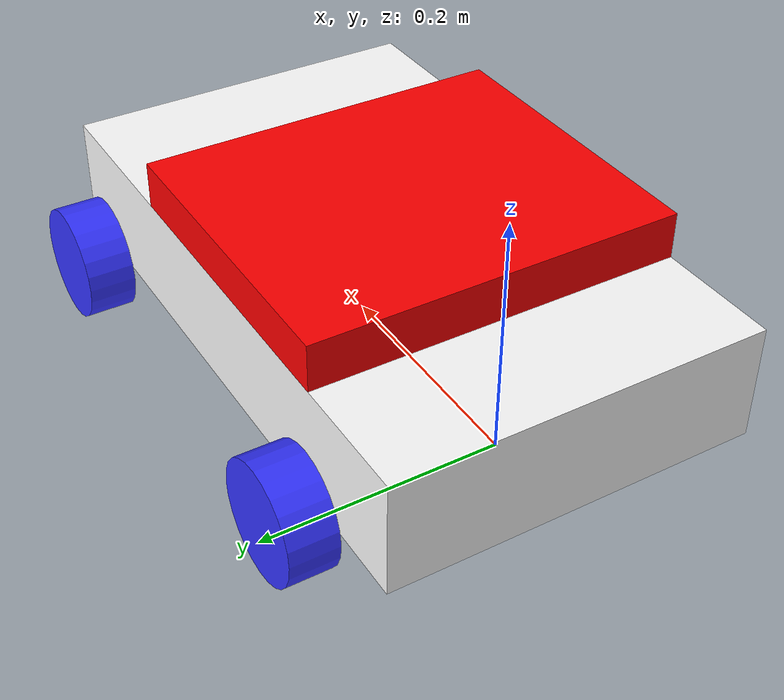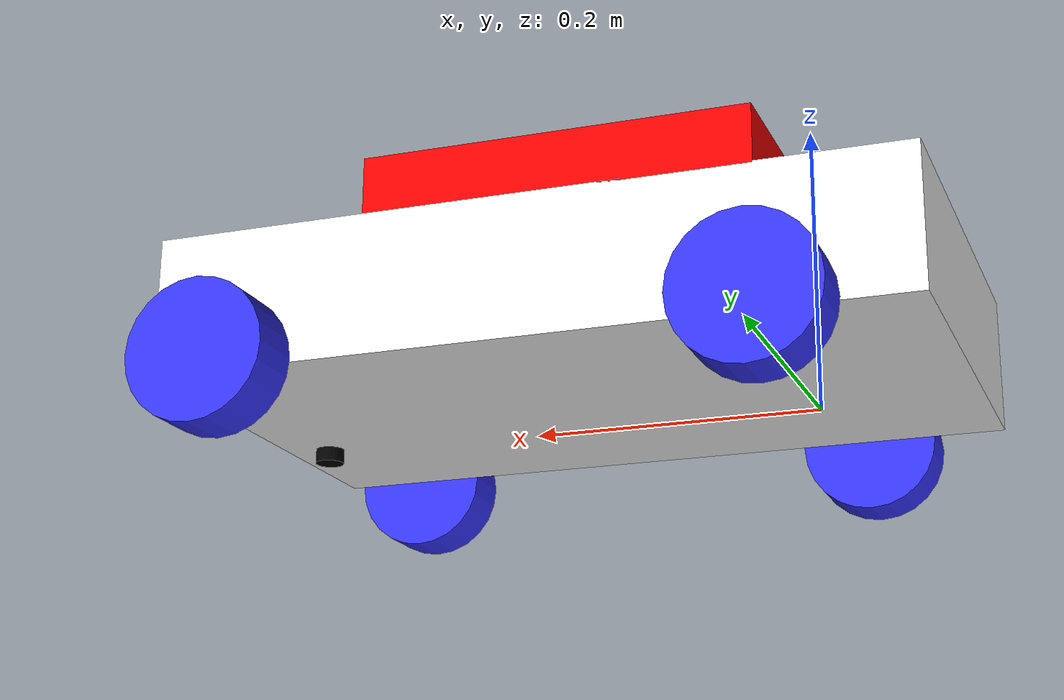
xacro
<?xml version="1.0"?>
<robot xmlns:xacro="http://www.ros.org/wiki/xacro" >

    <xacro:include filename="inertial_macros.xacro"/>

    <material name="white">
        <color rgba="1 1 1 1" />
    </material>

    <material name="orange">
        <color rgba="1 0.3 0.1 1"/>
    </material>

    <material name="blue">
        <color rgba="0.2 0.2 1 1"/>
    </material>

    <material name="black">
        <color rgba="0 0 0 1"/>
    </material>

     <material name="red">
        <color rgba="1 0 0 1"/>
    </material>

    <!-- REAR BASE LINK -->

    <link name="base_link">

    </link>

    <!-- CHASSIS LINK -->

    <joint name="chassis_joint" type="fixed">
        <parent link="base_link"/>
        <child link="chassis"/>
        <origin xyz="-0.1 0 0"/>
    </joint>

    <link name="chassis">
        <visual>
            <origin xyz="0.2575 0 0.0675"/>
            <geometry>
                <box size="0.515 0.31 0.097"/>
            </geometry>
            <material name="white"/>
        </visual>
        <collision>
            <origin xyz="0.2575 0 0.0675"/>
            <geometry>
                <box size="0.515 0.31 0.097"/>
            </geometry>
        </collision>
        <xacro:inertial_box mass="0.5" x="0.515" y="0.31" z="0.097">
            <origin xyz="0.2575 0 0.0675" rpy="0 0 0"/>
        </xacro:inertial_box>

    </link>

    <gazebo reference="chassis">
        <material>Gazebo/White</material>
    </gazebo>

    <!-- UPPER CHASSIS LINK -->

<joint name="upper_chassis_joint" type="fixed">
    <parent link="chassis"/>
    <child link="upper_chassis"/>
    <origin xyz="0.235 0 0.097"/>
</joint>

<link name="upper_chassis">
    <visual>
        <origin xyz="0 0 0.038" rpy="0 0 0"/>
        <geometry>
            <box size="0.263 0.31 0.04"/>
        </geometry>
        <material name="red"/>
    </visual>
    <collision>
        <origin xyz="0 0 0.038" rpy="0 0 0"/>
        <geometry>
            <box size="0.263 0.31 0.04"/>
        </geometry>
    </collision>
        <xacro:inertial_box mass="0.5" x="0.263" y="0.31" z="0.04">
            <origin xyz="0 0 0.038" rpy="0 0 0"/>
        </xacro:inertial_box>
</link>

    <gazebo reference="upper_chassis">
        <material>Gazebo/Red</material>
    </gazebo>

  <!-- Rear LEFT WHEEL -->

<joint name="rear_left_wheel_joint" type="continuous">
    <parent link="base_link"/>
    <child link="rear_left_wheel"/>
    <origin xyz="0 0.18 0.0194" rpy="-${pi/2} 0 0"/>
    <!-- y = b + thickness of wheel/2 + 0.5(mm) -->
    <!-- connected with base link -->
    <axis xyz="0 0 1"/>
</joint>
<link name="rear_left_wheel">
    <visual>
        <geometry>
            <cylinder length="0.04" radius="0.0485" />
        </geometry>
        <material name="blue"/>
    </visual>
    <collision>
        <geometry>
            <cylinder length="0.04" radius="0.0485" />
        </geometry>
    </collision>
    <xacro:inertial_cylinder mass="0.1" length="0.04" radius="0.0485">
            <origin xyz="0 0 0" rpy="0 0 0"/>
        </xacro:inertial_cylinder>
</link>
    <gazebo reference="rear_left_joint">
        <material>Gazebo/Blue</material>
    </gazebo>

  <!-- Rear RIGHT WHEEL -->

<joint name="rear_right_wheel_joint" type="continuous">
    <parent link="base_link"/>
    <child link="rear_right_wheel"/>
    <origin xyz="0 -0.18 0.0194" rpy="-${pi/2} 0 0"/>
    <!-- y = b + thickness of wheel/2 + 0.5(mm) -->
    <!-- connected with base link -->
    <axis xyz="0 0 -1"/>
</joint>
<link name="rear_right_wheel">
    <visual>
        <geometry>
            <cylinder length="0.04" radius="0.0485" />
        </geometry>
        <material name="blue"/>
    </visual>
    <collision>
        <geometry>
            <cylinder length="0.04" radius="0.0485" />
        </geometry>
    </collision>
        <xacro:inertial_cylinder mass="0.1" length="0.04" radius="0.0485">
            <origin xyz="0 0 0" rpy="0 0 0"/>
        </xacro:inertial_cylinder>
</link>

    <gazebo reference="rear_right_joint">
        <material>Gazebo/Blue</material>
    </gazebo>

<!-- FRONT -->

  <!-- FRONT LEFT WHEEL -->

<joint name="front_left_wheel_joint" type="continuous">
    <parent link="front_left_wheel_steer"/>
    <child link="front_left_wheel"/>
    <origin xyz="0 0.18 0.0194" rpy="-${pi/2} 0 0"/>
    <!-- y = b + thickness of wheel/2 + 0.5(mm) -->
    <!-- connected with base link -->
    <axis xyz="0 0 1"/>
</joint>
<link name="front_left_wheel">
    <visual>
        <geometry>
            <cylinder length="0.04" radius="0.0485" />
        </geometry>
        <material name="blue"/>
    </visual>
    <collision>
        <geometry>
            <cylinder length="0.04" radius="0.0485" />
        </geometry>
    </collision>
    <xacro:inertial_cylinder mass="0.1" length="0.04" radius="0.0485">
            <origin xyz="0 0 0" rpy="0 0 0"/>
    </xacro:inertial_cylinder>
</link>
    <gazebo reference="front_left_joint">
        <material>Gazebo/Blue</material>
    </gazebo>
<joint name="front_left_wheel_steer_joint" type="revolute">
    <limit lower="-1" upper="1" effort="1" velocity="5"/>
    <axis xyz="0 0 1"/>
    <parent link="base_link"/>
    <child link="front_left_wheel_steer"/>
    <origin rpy="0 0 0" xyz="0.360 0 0"/>
  </joint>
<link name="front_left_wheel_steer">
    <visual>
      <geometry>
        <cylinder length="0.01" radius="0.01"/>
      </geometry>
      <material name="black"/>
    </visual>
    <collision>
      <geometry>
        <cylinder length="0.01" radius="0.01"/>
      </geometry>
    </collision>
  </link>
    <gazebo reference="left_steering_joint">
        <material>Gazebo/Black</material>
    </gazebo>

  <!-- FRONT RIGHT WHEEL -->

<joint name="front_right_wheel_joint" type="continuous">
    <parent link="front_right_wheel_steer"/>
    <child link="front_right_wheel"/>
    <origin xyz="0 -0.18 0.0194" rpy="-${pi/2} 0 0"/>
    <!-- y = b + thickness of wheel/2 + 0.5(mm) -->
    <!-- connected with base link -->
    <axis xyz="0 0 -1"/>
</joint>
<link name="front_right_wheel">
    <visual>
        <geometry>
            <cylinder length="0.04" radius="0.0485" />
        </geometry>
        <material name="blue"/>
    </visual>
    <collision>
        <geometry>
            <cylinder length="0.04" radius="0.0485" />
        </geometry>
    </collision>
    <xacro:inertial_cylinder mass="0.1" length="0.04" radius="0.0485">
            <origin xyz="0 0 0" rpy="0 0 0"/>
    </xacro:inertial_cylinder>
</link>
    <gazebo reference="front_right_joint">
        <material>Gazebo/Blue</material>
    </gazebo>

<joint name="front_right_wheel_steer_joint" type="revolute">
    <limit lower="-1" upper="1" effort="1" velocity="5"/>
    <axis xyz="0 0 1"/>
    <parent link="base_link"/>
    <child link="front_right_wheel_steer"/>
    <origin rpy="0 0 0" xyz="0.360 0 0"/>
  </joint>

<link name="front_right_wheel_steer">
    <visual>
      <geometry>
        <cylinder length="0.01" radius="0.01"/>
      </geometry>
      <material name="black"/>
    </visual>
    <collision>
      <geometry>
        <cylinder length="0.01" radius="0.01"/>
      </geometry>
    </collision>
  </link>
    <gazebo reference="right_steering_joint">
        <material>Gazebo/Black</material>
    </gazebo>

    </robot>
